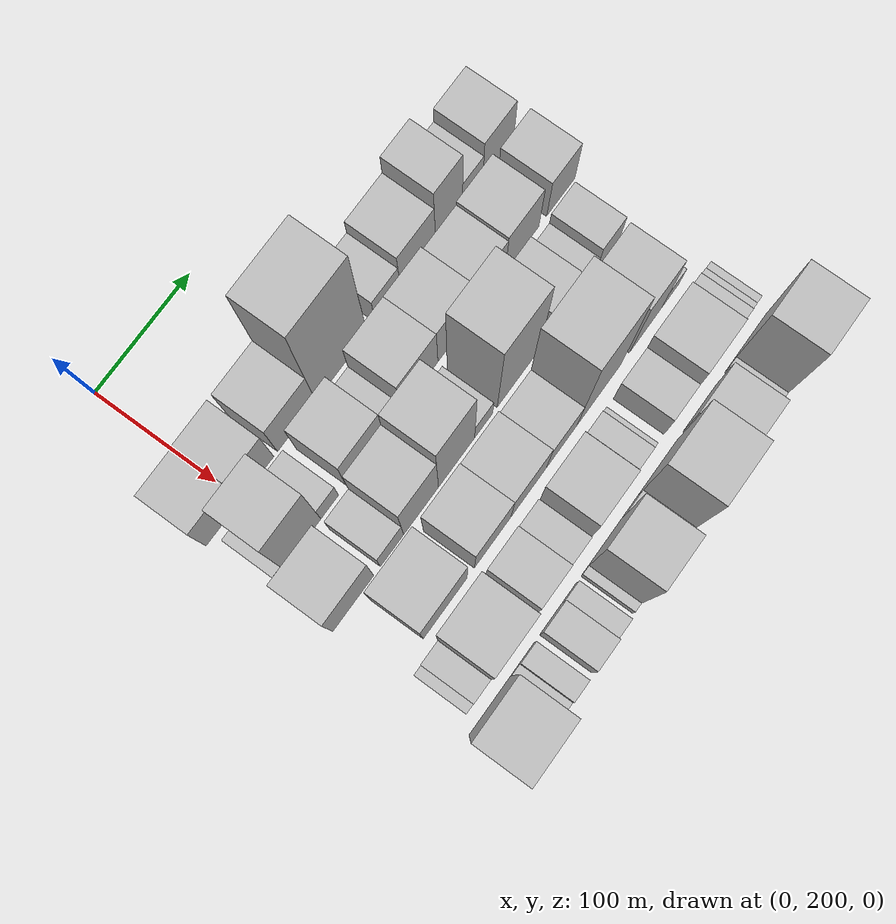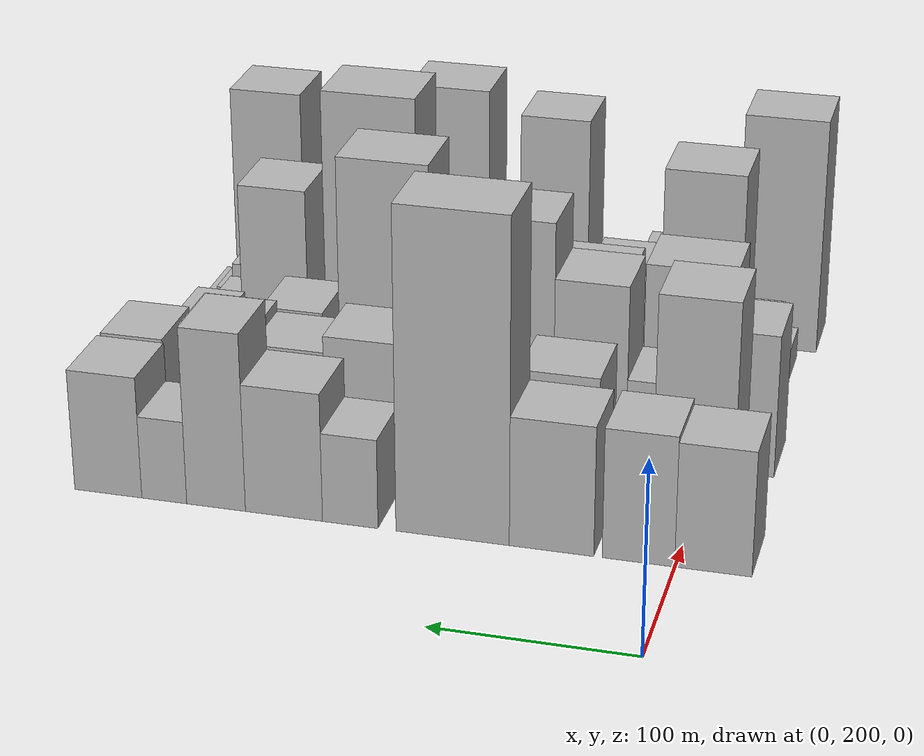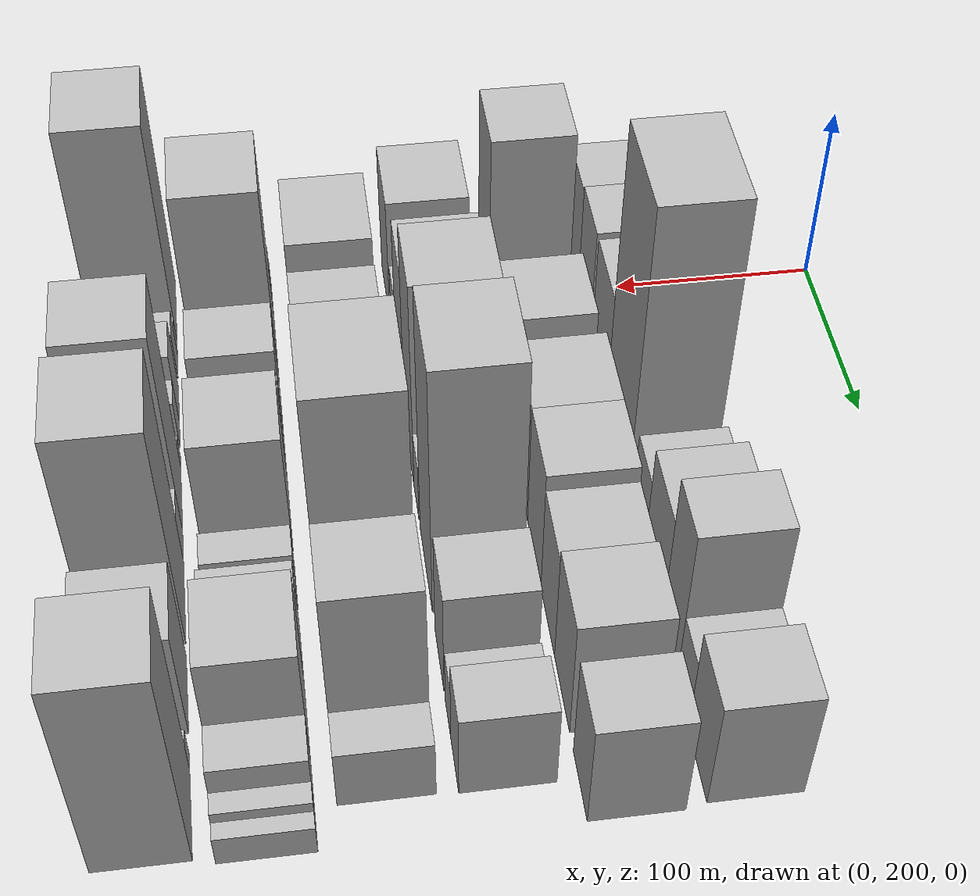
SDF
<sdf version="1.6">
 <world name="default">
  <model name="building_30">
   <static>1</static>
   <pose>100.0000 182.0196 0 0.000000 0.000000 0.000000</pose>
   <link name="link">
    <pose>0 0 33.00 0 0 0</pose>
    <collision name="collision"><geometry><box><size>40.0000 36.6295 66.0000</size></box></geometry></collision>
    <visual name="visual">
     <cast_shadows>0</cast_shadows>
     <geometry><box><size>40.0000 36.6295 66.0000</size></box></geometry>
     <material>
      <script>
       <uri>model://HANNAS_wall/materials/scripts</uri>
       <uri>model://HANNAS_wall/materials/textures</uri>
       <name>vrc/HANNAS_wall</name>
      </script>
     </material>
    </visual>
   </link>
  </model>
  <model name="building_31">
   <static>1</static>
   <pose>100.0000 217.7204 0 0.000000 0.000000 0.000000</pose>
   <link name="link">
    <pose>0 0 34.50 0 0 0</pose>
    <collision name="collision"><geometry><box><size>40.0000 34.7721 69.0000</size></box></geometry></collision>
    <visual name="visual">
     <cast_shadows>0</cast_shadows>
     <geometry><box><size>40.0000 34.7721 69.0000</size></box></geometry>
     <material>
      <script>
       <uri>model://HANNAS_wall/materials/scripts</uri>
       <uri>model://HANNAS_wall/materials/textures</uri>
       <name>vrc/HANNAS_wall</name>
      </script>
     </material>
    </visual>
   </link>
  </model>
  <model name="building_32">
   <static>1</static>
   <pose>100.0000 259.6823 0 0.000000 0.000000 0.000000</pose>
   <link name="link">
    <pose>0 0 34.50 0 0 0</pose>
    <collision name="collision"><geometry><box><size>40.0000 41.1518 69.0000</size></box></geometry></collision>
    <visual name="visual">
     <cast_shadows>0</cast_shadows>
     <geometry><box><size>40.0000 41.1518 69.0000</size></box></geometry>
     <material>
      <script>
       <uri>model://HANNAS_wall/materials/scripts</uri>
       <uri>model://HANNAS_wall/materials/textures</uri>
       <name>vrc/HANNAS_wall</name>
      </script>
     </material>
    </visual>
   </link>
  </model>
  <model name="building_33">
   <static>1</static>
   <pose>100.0000 308.3205 0 0.000000 0.000000 0.000000</pose>
   <link name="link">
    <pose>0 0 85.50 0 0 0</pose>
    <collision name="collision"><geometry><box><size>40.0000 56.1244 171.0000</size></box></geometry></collision>
    <visual name="visual">
     <cast_shadows>0</cast_shadows>
     <geometry><box><size>40.0000 56.1244 171.0000</size></box></geometry>
     <material>
      <script>
       <uri>model://HANNAS_wall/materials/scripts</uri>
       <uri>model://HANNAS_wall/materials/textures</uri>
       <name>vrc/HANNAS_wall</name>
      </script>
     </material>
    </visual>
   </link>
  </model>
  <model name="building_34">
   <static>1</static>
   <pose>100.0000 359.3745 0 0.000000 0.000000 0.000000</pose>
   <link name="link">
    <pose>0 0 24.00 0 0 0</pose>
    <collision name="collision"><geometry><box><size>40.0000 27.9836 48.0000</size></box></geometry></collision>
    <visual name="visual">
     <cast_shadows>0</cast_shadows>
     <geometry><box><size>40.0000 27.9836 48.0000</size></box></geometry>
     <material>
      <script>
       <uri>model://HANNAS_wall/materials/scripts</uri>
       <uri>model://HANNAS_wall/materials/textures</uri>
       <name>vrc/HANNAS_wall</name>
      </script>
     </material>
    </visual>
   </link>
  </model>
  <model name="building_35">
   <static>1</static>
   <pose>100.0000 393.0506 0 0.000000 0.000000 0.000000</pose>
   <link name="link">
    <pose>0 0 34.50 0 0 0</pose>
    <collision name="collision"><geometry><box><size>40.0000 39.3685 69.0000</size></box></geometry></collision>
    <visual name="visual">
     <cast_shadows>0</cast_shadows>
     <geometry><box><size>40.0000 39.3685 69.0000</size></box></geometry>
     <material>
      <script>
       <uri>model://HANNAS_wall/materials/scripts</uri>
       <uri>model://HANNAS_wall/materials/textures</uri>
       <name>vrc/HANNAS_wall</name>
      </script>
     </material>
    </visual>
   </link>
  </model>
  <model name="building_36">
   <static>1</static>
   <pose>100.0000 427.8991 0 0.000000 0.000000 0.000000</pose>
   <link name="link">
    <pose>0 0 48.00 0 0 0</pose>
    <collision name="collision"><geometry><box><size>40.0000 30.3287 96.0000</size></box></geometry></collision>
    <visual name="visual">
     <cast_shadows>0</cast_shadows>
     <geometry><box><size>40.0000 30.3287 96.0000</size></box></geometry>
     <material>
      <script>
       <uri>model://HANNAS_wall/materials/scripts</uri>
       <uri>model://HANNAS_wall/materials/textures</uri>
       <name>vrc/HANNAS_wall</name>
      </script>
     </material>
    </visual>
   </link>
  </model>
  <model name="building_37">
   <static>1</static>
   <pose>100.0000 454.7951 0 0.000000 0.000000 0.000000</pose>
   <link name="link">
    <pose>0 0 22.50 0 0 0</pose>
    <collision name="collision"><geometry><box><size>40.0000 23.4633 45.0000</size></box></geometry></collision>
    <visual name="visual">
     <cast_shadows>0</cast_shadows>
     <geometry><box><size>40.0000 23.4633 45.0000</size></box></geometry>
     <material>
      <script>
       <uri>model://HANNAS_wall/materials/scripts</uri>
       <uri>model://HANNAS_wall/materials/textures</uri>
       <name>vrc/HANNAS_wall</name>
      </script>
     </material>
    </visual>
   </link>
  </model>
  <model name="building_38">
   <static>1</static>
   <pose>100.0000 484.1768 0 0.000000 0.000000 0.000000</pose>
   <link name="link">
    <pose>0 0 33.00 0 0 0</pose>
    <collision name="collision"><geometry><box><size>40.0000 35.2999 66.0000</size></box></geometry></collision>
    <visual name="visual">
     <cast_shadows>0</cast_shadows>
     <geometry><box><size>40.0000 35.2999 66.0000</size></box></geometry>
     <material>
      <script>
       <uri>model://HANNAS_wall/materials/scripts</uri>
       <uri>model://HANNAS_wall/materials/textures</uri>
       <name>vrc/HANNAS_wall</name>
      </script>
     </material>
    </visual>
   </link>
  </model>
  <model name="building_87">
   <static>1</static>
   <pose>149.0000 176.6702 0 0.000000 0.000000 0.000000</pose>
   <link name="link">
    <pose>0 0 9.00 0 0 0</pose>
    <collision name="collision"><geometry><box><size>40.0000 8.4845 18.0000</size></box></geometry></collision>
    <visual name="visual">
     <cast_shadows>0</cast_shadows>
     <geometry><box><size>40.0000 8.4845 18.0000</size></box></geometry>
     <material>
      <script>
       <uri>model://HANNAS_wall/materials/scripts</uri>
       <uri>model://HANNAS_wall/materials/textures</uri>
       <name>vrc/HANNAS_wall</name>
      </script>
     </material>
    </visual>
   </link>
  </model>
  <model name="building_88">
   <static>1</static>
   <pose>149.0000 200.7447 0 0.000000 0.000000 0.000000</pose>
   <link name="link">
    <pose>0 0 58.50 0 0 0</pose>
    <collision name="collision"><geometry><box><size>40.0000 39.6646 117.0000</size></box></geometry></collision>
    <visual name="visual">
     <cast_shadows>0</cast_shadows>
     <geometry><box><size>40.0000 39.6646 117.0000</size></box></geometry>
     <material>
      <script>
       <uri>model://HANNAS_wall/materials/scripts</uri>
       <uri>model://HANNAS_wall/materials/textures</uri>
       <name>vrc/HANNAS_wall</name>
      </script>
     </material>
    </visual>
   </link>
  </model>
  <model name="building_89">
   <static>1</static>
   <pose>149.0000 230.0411 0 0.000000 0.000000 0.000000</pose>
   <link name="link">
    <pose>0 0 18.00 0 0 0</pose>
    <collision name="collision"><geometry><box><size>40.0000 18.9281 36.0000</size></box></geometry></collision>
    <visual name="visual">
     <cast_shadows>0</cast_shadows>
     <geometry><box><size>40.0000 18.9281 36.0000</size></box></geometry>
     <material>
      <script>
       <uri>model://HANNAS_wall/materials/scripts</uri>
       <uri>model://HANNAS_wall/materials/textures</uri>
       <name>vrc/HANNAS_wall</name>
      </script>
     </material>
    </visual>
   </link>
  </model>
  <model name="building_90">
   <static>1</static>
   <pose>149.0000 267.8626 0 0.000000 0.000000 0.000000</pose>
   <link name="link">
    <pose>0 0 34.50 0 0 0</pose>
    <collision name="collision"><geometry><box><size>40.0000 40.7148 69.0000</size></box></geometry></collision>
    <visual name="visual">
     <cast_shadows>0</cast_shadows>
     <geometry><box><size>40.0000 40.7148 69.0000</size></box></geometry>
     <material>
      <script>
       <uri>model://HANNAS_wall/materials/scripts</uri>
       <uri>model://HANNAS_wall/materials/textures</uri>
       <name>vrc/HANNAS_wall</name>
      </script>
     </material>
    </visual>
   </link>
  </model>
  <model name="building_91">
   <static>1</static>
   <pose>149.0000 299.0178 0 0.000000 0.000000 0.000000</pose>
   <link name="link">
    <pose>0 0 15.00 0 0 0</pose>
    <collision name="collision"><geometry><box><size>40.0000 15.5957 30.0000</size></box></geometry></collision>
    <visual name="visual">
     <cast_shadows>0</cast_shadows>
     <geometry><box><size>40.0000 15.5957 30.0000</size></box></geometry>
     <material>
      <script>
       <uri>model://HANNAS_wall/materials/scripts</uri>
       <uri>model://HANNAS_wall/materials/textures</uri>
       <name>vrc/HANNAS_wall</name>
      </script>
     </material>
    </visual>
   </link>
  </model>
  <model name="building_92">
   <static>1</static>
   <pose>149.0000 327.3763 0 0.000000 0.000000 0.000000</pose>
   <link name="link">
    <pose>0 0 37.50 0 0 0</pose>
    <collision name="collision"><geometry><box><size>40.0000 41.1214 75.0000</size></box></geometry></collision>
    <visual name="visual">
     <cast_shadows>0</cast_shadows>
     <geometry><box><size>40.0000 41.1214 75.0000</size></box></geometry>
     <material>
      <script>
       <uri>model://HANNAS_wall/materials/scripts</uri>
       <uri>model://HANNAS_wall/materials/textures</uri>
       <name>vrc/HANNAS_wall</name>
      </script>
     </material>
    </visual>
   </link>
  </model>
  <model name="building_93">
   <static>1</static>
   <pose>149.0000 367.3671 0 0.000000 0.000000 0.000000</pose>
   <link name="link">
    <pose>0 0 37.50 0 0 0</pose>
    <collision name="collision"><geometry><box><size>40.0000 38.8602 75.0000</size></box></geometry></collision>
    <visual name="visual">
     <cast_shadows>0</cast_shadows>
     <geometry><box><size>40.0000 38.8602 75.0000</size></box></geometry>
     <material>
      <script>
       <uri>model://HANNAS_wall/materials/scripts</uri>
       <uri>model://HANNAS_wall/materials/textures</uri>
       <name>vrc/HANNAS_wall</name>
      </script>
     </material>
    </visual>
   </link>
  </model>
  <model name="building_94">
   <static>1</static>
   <pose>149.0000 405.2362 0 0.000000 0.000000 0.000000</pose>
   <link name="link">
    <pose>0 0 33.00 0 0 0</pose>
    <collision name="collision"><geometry><box><size>40.0000 36.8780 66.0000</size></box></geometry></collision>
    <visual name="visual">
     <cast_shadows>0</cast_shadows>
     <geometry><box><size>40.0000 36.8780 66.0000</size></box></geometry>
     <material>
      <script>
       <uri>model://HANNAS_wall/materials/scripts</uri>
       <uri>model://HANNAS_wall/materials/textures</uri>
       <name>vrc/HANNAS_wall</name>
      </script>
     </material>
    </visual>
   </link>
  </model>
  <model name="building_95">
   <static>1</static>
   <pose>149.0000 442.9055 0 0.000000 0.000000 0.000000</pose>
   <link name="link">
    <pose>0 0 36.00 0 0 0</pose>
    <collision name="collision"><geometry><box><size>40.0000 38.4607 72.0000</size></box></geometry></collision>
    <visual name="visual">
     <cast_shadows>0</cast_shadows>
     <geometry><box><size>40.0000 38.4607 72.0000</size></box></geometry>
     <material>
      <script>
       <uri>model://HANNAS_wall/materials/scripts</uri>
       <uri>model://HANNAS_wall/materials/textures</uri>
       <name>vrc/HANNAS_wall</name>
      </script>
     </material>
    </visual>
   </link>
  </model>
  <model name="building_96">
   <static>1</static>
   <pose>149.0000 487.5004 0 0.000000 0.000000 0.000000</pose>
   <link name="link">
    <pose>0 0 31.50 0 0 0</pose>
    <collision name="collision"><geometry><box><size>40.0000 32.7290 63.0000</size></box></geometry></collision>
    <visual name="visual">
     <cast_shadows>0</cast_shadows>
     <geometry><box><size>40.0000 32.7290 63.0000</size></box></geometry>
     <material>
      <script>
       <uri>model://HANNAS_wall/materials/scripts</uri>
       <uri>model://HANNAS_wall/materials/textures</uri>
       <name>vrc/HANNAS_wall</name>
      </script>
     </material>
    </visual>
   </link>
  </model>
  <model name="building_139">
   <static>1</static>
   <pose>198.0000 189.6523 0 0.000000 0.000000 0.000000</pose>
   <link name="link">
    <pose>0 0 39.00 0 0 0</pose>
    <collision name="collision"><geometry><box><size>40.0000 43.4414 78.0000</size></box></geometry></collision>
    <visual name="visual">
     <cast_shadows>0</cast_shadows>
     <geometry><box><size>40.0000 43.4414 78.0000</size></box></geometry>
     <material>
      <script>
       <uri>model://HANNAS_wall/materials/scripts</uri>
       <uri>model://HANNAS_wall/materials/textures</uri>
       <name>vrc/HANNAS_wall</name>
      </script>
     </material>
    </visual>
   </link>
  </model>
  <model name="building_140">
   <static>1</static>
   <pose>198.0000 230.9407 0 0.000000 0.000000 0.000000</pose>
   <link name="link">
    <pose>0 0 22.50 0 0 0</pose>
    <collision name="collision"><geometry><box><size>40.0000 25.1355 45.0000</size></box></geometry></collision>
    <visual name="visual">
     <cast_shadows>0</cast_shadows>
     <geometry><box><size>40.0000 25.1355 45.0000</size></box></geometry>
     <material>
      <script>
       <uri>model://HANNAS_wall/materials/scripts</uri>
       <uri>model://HANNAS_wall/materials/textures</uri>
       <name>vrc/HANNAS_wall</name>
      </script>
     </material>
    </visual>
   </link>
  </model>
  <model name="building_141">
   <static>1</static>
   <pose>198.0000 262.3758 0 0.000000 0.000000 0.000000</pose>
   <link name="link">
    <pose>0 0 48.00 0 0 0</pose>
    <collision name="collision"><geometry><box><size>40.0000 37.7347 96.0000</size></box></geometry></collision>
    <visual name="visual">
     <cast_shadows>0</cast_shadows>
     <geometry><box><size>40.0000 37.7347 96.0000</size></box></geometry>
     <material>
      <script>
       <uri>model://HANNAS_wall/materials/scripts</uri>
       <uri>model://HANNAS_wall/materials/textures</uri>
       <name>vrc/HANNAS_wall</name>
      </script>
     </material>
    </visual>
   </link>
  </model>
  <model name="building_142">
   <static>1</static>
   <pose>198.0000 301.0584 0 0.000000 0.000000 0.000000</pose>
   <link name="link">
    <pose>0 0 63.00 0 0 0</pose>
    <collision name="collision"><geometry><box><size>40.0000 39.6305 126.0000</size></box></geometry></collision>
    <visual name="visual">
     <cast_shadows>0</cast_shadows>
     <geometry><box><size>40.0000 39.6305 126.0000</size></box></geometry>
     <material>
      <script>
       <uri>model://HANNAS_wall/materials/scripts</uri>
       <uri>model://HANNAS_wall/materials/textures</uri>
       <name>vrc/HANNAS_wall</name>
      </script>
     </material>
    </visual>
   </link>
  </model>
  <model name="building_143">
   <static>1</static>
   <pose>198.0000 330.9256 0 0.000000 0.000000 0.000000</pose>
   <link name="link">
    <pose>0 0 18.00 0 0 0</pose>
    <collision name="collision"><geometry><box><size>40.0000 20.1038 36.0000</size></box></geometry></collision>
    <visual name="visual">
     <cast_shadows>0</cast_shadows>
     <geometry><box><size>40.0000 20.1038 36.0000</size></box></geometry>
     <material>
      <script>
       <uri>model://HANNAS_wall/materials/scripts</uri>
       <uri>model://HANNAS_wall/materials/textures</uri>
       <name>vrc/HANNAS_wall</name>
      </script>
     </material>
    </visual>
   </link>
  </model>
  <model name="building_144">
   <static>1</static>
   <pose>198.0000 369.8053 0 0.000000 0.000000 0.000000</pose>
   <link name="link">
    <pose>0 0 75.00 0 0 0</pose>
    <collision name="collision"><geometry><box><size>40.0000 47.6557 150.0000</size></box></geometry></collision>
    <visual name="visual">
     <cast_shadows>0</cast_shadows>
     <geometry><box><size>40.0000 47.6557 150.0000</size></box></geometry>
     <material>
      <script>
       <uri>model://HANNAS_wall/materials/scripts</uri>
       <uri>model://HANNAS_wall/materials/textures</uri>
       <name>vrc/HANNAS_wall</name>
      </script>
     </material>
    </visual>
   </link>
  </model>
  <model name="building_145">
   <static>1</static>
   <pose>198.0000 418.8979 0 0.000000 0.000000 0.000000</pose>
   <link name="link">
    <pose>0 0 31.50 0 0 0</pose>
    <collision name="collision"><geometry><box><size>40.0000 32.5294 63.0000</size></box></geometry></collision>
    <visual name="visual">
     <cast_shadows>0</cast_shadows>
     <geometry><box><size>40.0000 32.5294 63.0000</size></box></geometry>
     <material>
      <script>
       <uri>model://HANNAS_wall/materials/scripts</uri>
       <uri>model://HANNAS_wall/materials/textures</uri>
       <name>vrc/HANNAS_wall</name>
      </script>
     </material>
    </visual>
   </link>
  </model>
  <model name="building_146">
   <static>1</static>
   <pose>198.0000 448.7330 0 0.000000 0.000000 0.000000</pose>
   <link name="link">
    <pose>0 0 16.50 0 0 0</pose>
    <collision name="collision"><geometry><box><size>40.0000 19.1409 33.0000</size></box></geometry></collision>
    <visual name="visual">
     <cast_shadows>0</cast_shadows>
     <geometry><box><size>40.0000 19.1409 33.0000</size></box></geometry>
     <material>
      <script>
       <uri>model://HANNAS_wall/materials/scripts</uri>
       <uri>model://HANNAS_wall/materials/textures</uri>
       <name>vrc/HANNAS_wall</name>
      </script>
     </material>
    </visual>
   </link>
  </model>
  <model name="building_147">
   <static>1</static>
   <pose>198.0000 471.4387 0 0.000000 0.000000 0.000000</pose>
   <link name="link">
    <pose>0 0 25.50 0 0 0</pose>
    <collision name="collision"><geometry><box><size>40.0000 26.2704 51.0000</size></box></geometry></collision>
    <visual name="visual">
     <cast_shadows>0</cast_shadows>
     <geometry><box><size>40.0000 26.2704 51.0000</size></box></geometry>
     <material>
      <script>
       <uri>model://HANNAS_wall/materials/scripts</uri>
       <uri>model://HANNAS_wall/materials/textures</uri>
       <name>vrc/HANNAS_wall</name>
      </script>
     </material>
    </visual>
   </link>
  </model>
  <model name="building_187">
   <static>1</static>
   <pose>247.0000 221.1650 0 0.000000 0.000000 0.000000</pose>
   <link name="link">
    <pose>0 0 43.50 0 0 0</pose>
    <collision name="collision"><geometry><box><size>40.0000 47.0825 87.0000</size></box></geometry></collision>
    <visual name="visual">
     <cast_shadows>0</cast_shadows>
     <geometry><box><size>40.0000 47.0825 87.0000</size></box></geometry>
     <material>
      <script>
       <uri>model://HANNAS_wall/materials/scripts</uri>
       <uri>model://HANNAS_wall/materials/textures</uri>
       <name>vrc/HANNAS_wall</name>
      </script>
     </material>
    </visual>
   </link>
  </model>
  <model name="building_188">
   <static>1</static>
   <pose>247.0000 272.4633 0 0.000000 0.000000 0.000000</pose>
   <link name="link">
    <pose>0 0 39.00 0 0 0</pose>
    <collision name="collision"><geometry><box><size>40.0000 39.5142 78.0000</size></box></geometry></collision>
    <visual name="visual">
     <cast_shadows>0</cast_shadows>
     <geometry><box><size>40.0000 39.5142 78.0000</size></box></geometry>
     <material>
      <script>
       <uri>model://HANNAS_wall/materials/scripts</uri>
       <uri>model://HANNAS_wall/materials/textures</uri>
       <name>vrc/HANNAS_wall</name>
      </script>
     </material>
    </visual>
   </link>
  </model>
  <model name="building_189">
   <static>1</static>
   <pose>247.0000 311.9740 0 0.000000 0.000000 0.000000</pose>
   <link name="link">
    <pose>0 0 37.50 0 0 0</pose>
    <collision name="collision"><geometry><box><size>40.0000 39.5072 75.0000</size></box></geometry></collision>
    <visual name="visual">
     <cast_shadows>0</cast_shadows>
     <geometry><box><size>40.0000 39.5072 75.0000</size></box></geometry>
     <material>
      <script>
       <uri>model://HANNAS_wall/materials/scripts</uri>
       <uri>model://HANNAS_wall/materials/textures</uri>
       <name>vrc/HANNAS_wall</name>
      </script>
     </material>
    </visual>
   </link>
  </model>
  <model name="building_190">
   <static>1</static>
   <pose>247.0000 348.9388 0 0.000000 0.000000 0.000000</pose>
   <link name="link">
    <pose>0 0 31.50 0 0 0</pose>
    <collision name="collision"><geometry><box><size>40.0000 34.4222 63.0000</size></box></geometry></collision>
    <visual name="visual">
     <cast_shadows>0</cast_shadows>
     <geometry><box><size>40.0000 34.4222 63.0000</size></box></geometry>
     <material>
      <script>
       <uri>model://HANNAS_wall/materials/scripts</uri>
       <uri>model://HANNAS_wall/materials/textures</uri>
       <name>vrc/HANNAS_wall</name>
      </script>
     </material>
    </visual>
   </link>
  </model>
  <model name="building_191">
   <static>1</static>
   <pose>247.0000 391.2923 0 0.000000 0.000000 0.000000</pose>
   <link name="link">
    <pose>0 0 82.50 0 0 0</pose>
    <collision name="collision"><geometry><box><size>40.0000 50.2849 165.0000</size></box></geometry></collision>
    <visual name="visual">
     <cast_shadows>0</cast_shadows>
     <geometry><box><size>40.0000 50.2849 165.0000</size></box></geometry>
     <material>
      <script>
       <uri>model://HANNAS_wall/materials/scripts</uri>
       <uri>model://HANNAS_wall/materials/textures</uri>
       <name>vrc/HANNAS_wall</name>
      </script>
     </material>
    </visual>
   </link>
  </model>
  <model name="building_192">
   <static>1</static>
   <pose>247.0000 444.9291 0 0.000000 0.000000 0.000000</pose>
   <link name="link">
    <pose>0 0 54.00 0 0 0</pose>
    <collision name="collision"><geometry><box><size>40.0000 36.9885 108.0000</size></box></geometry></collision>
    <visual name="visual">
     <cast_shadows>0</cast_shadows>
     <geometry><box><size>40.0000 36.9885 108.0000</size></box></geometry>
     <material>
      <script>
       <uri>model://HANNAS_wall/materials/scripts</uri>
       <uri>model://HANNAS_wall/materials/textures</uri>
       <name>vrc/HANNAS_wall</name>
      </script>
     </material>
    </visual>
   </link>
  </model>
  <model name="building_193">
   <static>1</static>
   <pose>247.0000 473.6111 0 0.000000 0.000000 0.000000</pose>
   <link name="link">
    <pose>0 0 18.00 0 0 0</pose>
    <collision name="collision"><geometry><box><size>40.0000 20.3756 36.0000</size></box></geometry></collision>
    <visual name="visual">
     <cast_shadows>0</cast_shadows>
     <geometry><box><size>40.0000 20.3756 36.0000</size></box></geometry>
     <material>
      <script>
       <uri>model://HANNAS_wall/materials/scripts</uri>
       <uri>model://HANNAS_wall/materials/textures</uri>
       <name>vrc/HANNAS_wall</name>
      </script>
     </material>
    </visual>
   </link>
  </model>
  <model name="building_232">
   <static>1</static>
   <pose>296.0000 179.7727 0 0.000000 0.000000 0.000000</pose>
   <link name="link">
    <pose>0 0 9.00 0 0 0</pose>
    <collision name="collision"><geometry><box><size>40.0000 7.5746 18.0000</size></box></geometry></collision>
    <visual name="visual">
     <cast_shadows>0</cast_shadows>
     <geometry><box><size>40.0000 7.5746 18.0000</size></box></geometry>
     <material>
      <script>
       <uri>model://HANNAS_wall/materials/scripts</uri>
       <uri>model://HANNAS_wall/materials/textures</uri>
       <name>vrc/HANNAS_wall</name>
      </script>
     </material>
    </visual>
   </link>
  </model>
  <model name="building_233">
   <static>1</static>
   <pose>296.0000 192.6267 0 0.000000 0.000000 0.000000</pose>
   <link name="link">
    <pose>0 0 16.50 0 0 0</pose>
    <collision name="collision"><geometry><box><size>40.0000 18.1333 33.0000</size></box></geometry></collision>
    <visual name="visual">
     <cast_shadows>0</cast_shadows>
     <geometry><box><size>40.0000 18.1333 33.0000</size></box></geometry>
     <material>
      <script>
       <uri>model://HANNAS_wall/materials/scripts</uri>
       <uri>model://HANNAS_wall/materials/textures</uri>
       <name>vrc/HANNAS_wall</name>
      </script>
     </material>
    </visual>
   </link>
  </model>
  <model name="building_234">
   <static>1</static>
   <pose>296.0000 223.3848 0 0.000000 0.000000 0.000000</pose>
   <link name="link">
    <pose>0 0 60.00 0 0 0</pose>
    <collision name="collision"><geometry><box><size>40.0000 43.3829 120.0000</size></box></geometry></collision>
    <visual name="visual">
     <cast_shadows>0</cast_shadows>
     <geometry><box><size>40.0000 43.3829 120.0000</size></box></geometry>
     <material>
      <script>
       <uri>model://HANNAS_wall/materials/scripts</uri>
       <uri>model://HANNAS_wall/materials/textures</uri>
       <name>vrc/HANNAS_wall</name>
      </script>
     </material>
    </visual>
   </link>
  </model>
  <model name="building_235">
   <static>1</static>
   <pose>296.0000 268.2190 0 0.000000 0.000000 0.000000</pose>
   <link name="link">
    <pose>0 0 30.00 0 0 0</pose>
    <collision name="collision"><geometry><box><size>40.0000 32.2855 60.0000</size></box></geometry></collision>
    <visual name="visual">
     <cast_shadows>0</cast_shadows>
     <geometry><box><size>40.0000 32.2855 60.0000</size></box></geometry>
     <material>
      <script>
       <uri>model://HANNAS_wall/materials/scripts</uri>
       <uri>model://HANNAS_wall/materials/textures</uri>
       <name>vrc/HANNAS_wall</name>
      </script>
     </material>
    </visual>
   </link>
  </model>
  <model name="building_236">
   <static>1</static>
   <pose>296.0000 295.6253 0 0.000000 0.000000 0.000000</pose>
   <link name="link">
    <pose>0 0 22.50 0 0 0</pose>
    <collision name="collision"><geometry><box><size>40.0000 22.5272 45.0000</size></box></geometry></collision>
    <visual name="visual">
     <cast_shadows>0</cast_shadows>
     <geometry><box><size>40.0000 22.5272 45.0000</size></box></geometry>
     <material>
      <script>
       <uri>model://HANNAS_wall/materials/scripts</uri>
       <uri>model://HANNAS_wall/materials/textures</uri>
       <name>vrc/HANNAS_wall</name>
      </script>
     </material>
    </visual>
   </link>
  </model>
  <model name="building_237">
   <static>1</static>
   <pose>296.0000 331.4336 0 0.000000 0.000000 0.000000</pose>
   <link name="link">
    <pose>0 0 37.50 0 0 0</pose>
    <collision name="collision"><geometry><box><size>40.0000 41.0893 75.0000</size></box></geometry></collision>
    <visual name="visual">
     <cast_shadows>0</cast_shadows>
     <geometry><box><size>40.0000 41.0893 75.0000</size></box></geometry>
     <material>
      <script>
       <uri>model://HANNAS_wall/materials/scripts</uri>
       <uri>model://HANNAS_wall/materials/textures</uri>
       <name>vrc/HANNAS_wall</name>
      </script>
     </material>
    </visual>
   </link>
  </model>
  <model name="building_238">
   <static>1</static>
   <pose>296.0000 369.6253 0 0.000000 0.000000 0.000000</pose>
   <link name="link">
    <pose>0 0 15.00 0 0 0</pose>
    <collision name="collision"><geometry><box><size>40.0000 17.2942 30.0000</size></box></geometry></collision>
    <visual name="visual">
     <cast_shadows>0</cast_shadows>
     <geometry><box><size>40.0000 17.2942 30.0000</size></box></geometry>
     <material>
      <script>
       <uri>model://HANNAS_wall/materials/scripts</uri>
       <uri>model://HANNAS_wall/materials/textures</uri>
       <name>vrc/HANNAS_wall</name>
      </script>
     </material>
    </visual>
   </link>
  </model>
  <model name="building_239">
   <static>1</static>
   <pose>296.0000 381.6330 0 0.000000 0.000000 0.000000</pose>
   <link name="link">
    <pose>0 0 7.50 0 0 0</pose>
    <collision name="collision"><geometry><box><size>40.0000 6.7213 15.0000</size></box></geometry></collision>
    <visual name="visual">
     <cast_shadows>0</cast_shadows>
     <geometry><box><size>40.0000 6.7213 15.0000</size></box></geometry>
     <material>
      <script>
       <uri>model://HANNAS_wall/materials/scripts</uri>
       <uri>model://HANNAS_wall/materials/textures</uri>
       <name>vrc/HANNAS_wall</name>
      </script>
     </material>
    </visual>
   </link>
  </model>
  <model name="building_240">
   <static>1</static>
   <pose>296.0000 409.1704 0 0.000000 0.000000 0.000000</pose>
   <link name="link">
    <pose>0 0 24.00 0 0 0</pose>
    <collision name="collision"><geometry><box><size>40.0000 28.3536 48.0000</size></box></geometry></collision>
    <visual name="visual">
     <cast_shadows>0</cast_shadows>
     <geometry><box><size>40.0000 28.3536 48.0000</size></box></geometry>
     <material>
      <script>
       <uri>model://HANNAS_wall/materials/scripts</uri>
       <uri>model://HANNAS_wall/materials/textures</uri>
       <name>vrc/HANNAS_wall</name>
      </script>
     </material>
    </visual>
   </link>
  </model>
  <model name="building_241">
   <static>1</static>
   <pose>296.0000 444.1694 0 0.000000 0.000000 0.000000</pose>
   <link name="link">
    <pose>0 0 39.00 0 0 0</pose>
    <collision name="collision"><geometry><box><size>40.0000 41.6444 78.0000</size></box></geometry></collision>
    <visual name="visual">
     <cast_shadows>0</cast_shadows>
     <geometry><box><size>40.0000 41.6444 78.0000</size></box></geometry>
     <material>
      <script>
       <uri>model://HANNAS_wall/materials/scripts</uri>
       <uri>model://HANNAS_wall/materials/textures</uri>
       <name>vrc/HANNAS_wall</name>
      </script>
     </material>
    </visual>
   </link>
  </model>
  <model name="building_242">
   <static>1</static>
   <pose>296.0000 475.5629 0 0.000000 0.000000 0.000000</pose>
   <link name="link">
    <pose>0 0 19.50 0 0 0</pose>
    <collision name="collision"><geometry><box><size>40.0000 21.1425 39.0000</size></box></geometry></collision>
    <visual name="visual">
     <cast_shadows>0</cast_shadows>
     <geometry><box><size>40.0000 21.1425 39.0000</size></box></geometry>
     <material>
      <script>
       <uri>model://HANNAS_wall/materials/scripts</uri>
       <uri>model://HANNAS_wall/materials/textures</uri>
       <name>vrc/HANNAS_wall</name>
      </script>
     </material>
    </visual>
   </link>
  </model>
  <model name="building_243">
   <static>1</static>
   <pose>296.0000 490.9672 0 0.000000 0.000000 0.000000</pose>
   <link name="link">
    <pose>0 0 12.00 0 0 0</pose>
    <collision name="collision"><geometry><box><size>40.0000 9.6662 24.0000</size></box></geometry></collision>
    <visual name="visual">
     <cast_shadows>0</cast_shadows>
     <geometry><box><size>40.0000 9.6662 24.0000</size></box></geometry>
     <material>
      <script>
       <uri>model://HANNAS_wall/materials/scripts</uri>
       <uri>model://HANNAS_wall/materials/textures</uri>
       <name>vrc/HANNAS_wall</name>
      </script>
     </material>
    </visual>
   </link>
  </model>
  <model name="building_244">
   <static>1</static>
   <pose>296.0000 499.6415 0 0.000000 0.000000 0.000000</pose>
   <link name="link">
    <pose>0 0 9.00 0 0 0</pose>
    <collision name="collision"><geometry><box><size>40.0000 7.6824 18.0000</size></box></geometry></collision>
    <visual name="visual">
     <cast_shadows>0</cast_shadows>
     <geometry><box><size>40.0000 7.6824 18.0000</size></box></geometry>
     <material>
      <script>
       <uri>model://HANNAS_wall/materials/scripts</uri>
       <uri>model://HANNAS_wall/materials/textures</uri>
       <name>vrc/HANNAS_wall</name>
      </script>
     </material>
    </visual>
   </link>
  </model>
  <model name="building_278">
   <static>1</static>
   <pose>345.0000 188.8658 0 0.000000 0.000000 0.000000</pose>
   <link name="link">
    <pose>0 0 67.50 0 0 0</pose>
    <collision name="collision"><geometry><box><size>40.0000 44.7525 135.0000</size></box></geometry></collision>
    <visual name="visual">
     <cast_shadows>0</cast_shadows>
     <geometry><box><size>40.0000 44.7525 135.0000</size></box></geometry>
     <material>
      <script>
       <uri>model://HANNAS_wall/materials/scripts</uri>
       <uri>model://HANNAS_wall/materials/textures</uri>
       <name>vrc/HANNAS_wall</name>
      </script>
     </material>
    </visual>
   </link>
  </model>
  <model name="building_279">
   <static>1</static>
   <pose>345.0000 215.6732 0 0.000000 0.000000 0.000000</pose>
   <link name="link">
    <pose>0 0 9.00 0 0 0</pose>
    <collision name="collision"><geometry><box><size>40.0000 8.8622 18.0000</size></box></geometry></collision>
    <visual name="visual">
     <cast_shadows>0</cast_shadows>
     <geometry><box><size>40.0000 8.8622 18.0000</size></box></geometry>
     <material>
      <script>
       <uri>model://HANNAS_wall/materials/scripts</uri>
       <uri>model://HANNAS_wall/materials/textures</uri>
       <name>vrc/HANNAS_wall</name>
      </script>
     </material>
    </visual>
   </link>
  </model>
  <model name="building_280">
   <static>1</static>
   <pose>345.0000 228.4265 0 0.000000 0.000000 0.000000</pose>
   <link name="link">
    <pose>0 0 15.00 0 0 0</pose>
    <collision name="collision"><geometry><box><size>40.0000 16.6444 30.0000</size></box></geometry></collision>
    <visual name="visual">
     <cast_shadows>0</cast_shadows>
     <geometry><box><size>40.0000 16.6444 30.0000</size></box></geometry>
     <material>
      <script>
       <uri>model://HANNAS_wall/materials/scripts</uri>
       <uri>model://HANNAS_wall/materials/textures</uri>
       <name>vrc/HANNAS_wall</name>
      </script>
     </material>
    </visual>
   </link>
  </model>
  <model name="building_281">
   <static>1</static>
   <pose>345.0000 254.6248 0 0.000000 0.000000 0.000000</pose>
   <link name="link">
    <pose>0 0 22.50 0 0 0</pose>
    <collision name="collision"><geometry><box><size>40.0000 23.7522 45.0000</size></box></geometry></collision>
    <visual name="visual">
     <cast_shadows>0</cast_shadows>
     <geometry><box><size>40.0000 23.7522 45.0000</size></box></geometry>
     <material>
      <script>
       <uri>model://HANNAS_wall/materials/scripts</uri>
       <uri>model://HANNAS_wall/materials/textures</uri>
       <name>vrc/HANNAS_wall</name>
      </script>
     </material>
    </visual>
   </link>
  </model>
  <model name="building_282">
   <static>1</static>
   <pose>345.0000 274.4206 0 0.000000 0.000000 0.000000</pose>
   <link name="link">
    <pose>0 0 15.00 0 0 0</pose>
    <collision name="collision"><geometry><box><size>40.0000 15.8394 30.0000</size></box></geometry></collision>
    <visual name="visual">
     <cast_shadows>0</cast_shadows>
     <geometry><box><size>40.0000 15.8394 30.0000</size></box></geometry>
     <material>
      <script>
       <uri>model://HANNAS_wall/materials/scripts</uri>
       <uri>model://HANNAS_wall/materials/textures</uri>
       <name>vrc/HANNAS_wall</name>
      </script>
     </material>
    </visual>
   </link>
  </model>
  <model name="building_283">
   <static>1</static>
   <pose>345.0000 291.7623 0 0.000000 0.000000 0.000000</pose>
   <link name="link">
    <pose>0 0 7.50 0 0 0</pose>
    <collision name="collision"><geometry><box><size>40.0000 6.8439 15.0000</size></box></geometry></collision>
    <visual name="visual">
     <cast_shadows>0</cast_shadows>
     <geometry><box><size>40.0000 6.8439 15.0000</size></box></geometry>
     <material>
      <script>
       <uri>model://HANNAS_wall/materials/scripts</uri>
       <uri>model://HANNAS_wall/materials/textures</uri>
       <name>vrc/HANNAS_wall</name>
      </script>
     </material>
    </visual>
   </link>
  </model>
  <model name="building_284">
   <static>1</static>
   <pose>345.0000 314.4939 0 0.000000 0.000000 0.000000</pose>
   <link name="link">
    <pose>0 0 61.50 0 0 0</pose>
    <collision name="collision"><geometry><box><size>40.0000 38.6193 123.0000</size></box></geometry></collision>
    <visual name="visual">
     <cast_shadows>0</cast_shadows>
     <geometry><box><size>40.0000 38.6193 123.0000</size></box></geometry>
     <material>
      <script>
       <uri>model://HANNAS_wall/materials/scripts</uri>
       <uri>model://HANNAS_wall/materials/textures</uri>
       <name>vrc/HANNAS_wall</name>
      </script>
     </material>
    </visual>
   </link>
  </model>
  <model name="building_285">
   <static>1</static>
   <pose>345.0000 342.6955 0 0.000000 0.000000 0.000000</pose>
   <link name="link">
    <pose>0 0 15.00 0 0 0</pose>
    <collision name="collision"><geometry><box><size>40.0000 17.7839 30.0000</size></box></geometry></collision>
    <visual name="visual">
     <cast_shadows>0</cast_shadows>
     <geometry><box><size>40.0000 17.7839 30.0000</size></box></geometry>
     <material>
      <script>
       <uri>model://HANNAS_wall/materials/scripts</uri>
       <uri>model://HANNAS_wall/materials/textures</uri>
       <name>vrc/HANNAS_wall</name>
      </script>
     </material>
    </visual>
   </link>
  </model>
  <model name="building_286">
   <static>1</static>
   <pose>345.0000 374.1527 0 0.000000 0.000000 0.000000</pose>
   <link name="link">
    <pose>0 0 67.50 0 0 0</pose>
    <collision name="collision"><geometry><box><size>40.0000 45.1304 135.0000</size></box></geometry></collision>
    <visual name="visual">
     <cast_shadows>0</cast_shadows>
     <geometry><box><size>40.0000 45.1304 135.0000</size></box></geometry>
     <material>
      <script>
       <uri>model://HANNAS_wall/materials/scripts</uri>
       <uri>model://HANNAS_wall/materials/textures</uri>
       <name>vrc/HANNAS_wall</name>
      </script>
     </material>
    </visual>
   </link>
  </model>
  <model name="building_287">
   <static>1</static>
   <pose>345.0000 422.9305 0 0.000000 0.000000 0.000000</pose>
   <link name="link">
    <pose>0 0 33.00 0 0 0</pose>
    <collision name="collision"><geometry><box><size>40.0000 38.4253 66.0000</size></box></geometry></collision>
    <visual name="visual">
     <cast_shadows>0</cast_shadows>
     <geometry><box><size>40.0000 38.4253 66.0000</size></box></geometry>
     <material>
      <script>
       <uri>model://HANNAS_wall/materials/scripts</uri>
       <uri>model://HANNAS_wall/materials/textures</uri>
       <name>vrc/HANNAS_wall</name>
      </script>
     </material>
    </visual>
   </link>
  </model>
  <model name="building_288">
   <static>1</static>
   <pose>345.0000 456.1085 0 0.000000 0.000000 0.000000</pose>
   <link name="link">
    <pose>0 0 9.00 0 0 0</pose>
    <collision name="collision"><geometry><box><size>40.0000 7.9308 18.0000</size></box></geometry></collision>
    <visual name="visual">
     <cast_shadows>0</cast_shadows>
     <geometry><box><size>40.0000 7.9308 18.0000</size></box></geometry>
     <material>
      <script>
       <uri>model://HANNAS_wall/materials/scripts</uri>
       <uri>model://HANNAS_wall/materials/textures</uri>
       <name>vrc/HANNAS_wall</name>
      </script>
     </material>
    </visual>
   </link>
  </model>
  <model name="building_289">
   <static>1</static>
   <pose>345.0000 480.5194 0 0.000000 0.000000 0.000000</pose>
   <link name="link">
    <pose>0 0 61.50 0 0 0</pose>
    <collision name="collision"><geometry><box><size>40.0000 40.8910 123.0000</size></box></geometry></collision>
    <visual name="visual">
     <cast_shadows>0</cast_shadows>
     <geometry><box><size>40.0000 40.8910 123.0000</size></box></geometry>
     <material>
      <script>
       <uri>model://HANNAS_wall/materials/scripts</uri>
       <uri>model://HANNAS_wall/materials/textures</uri>
       <name>vrc/HANNAS_wall</name>
      </script>
     </material>
    </visual>
   </link>
  </model>
 </world>
</sdf>
